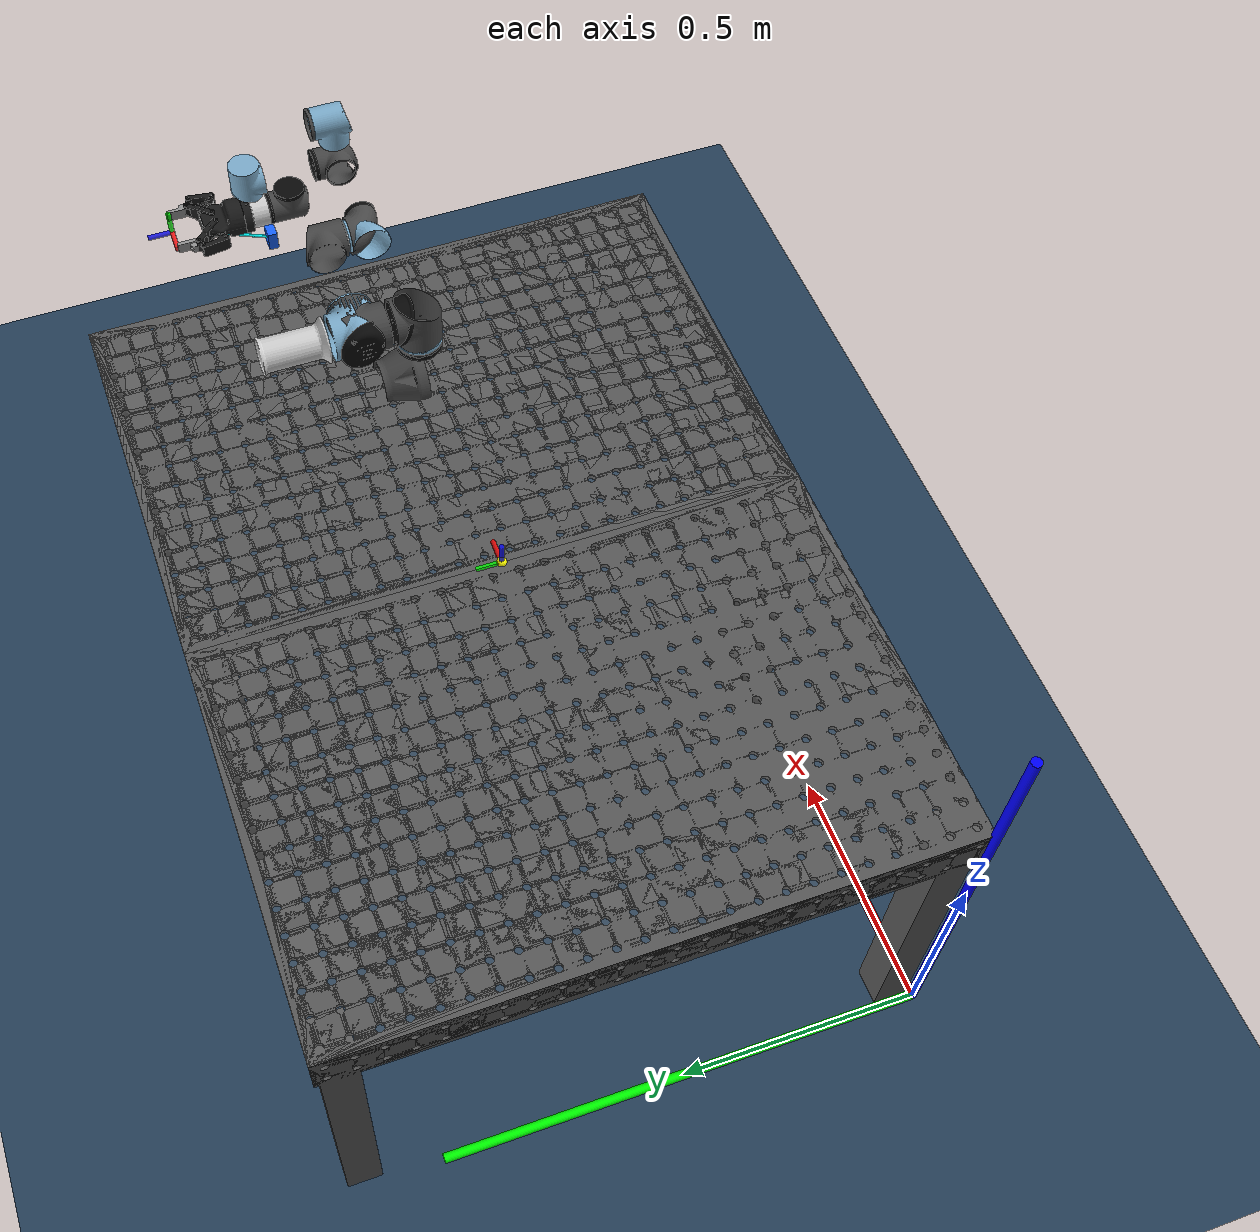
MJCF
<mujoco model="scene">

    <include file="../ur3e_robotiq/ur3e_robotiq.xml" />

    <compiler angle="radian" autolimits="true" />

    <option timestep="0.002" integrator="implicitfast" solver="PGS" gravity="0 0 -9.82"
            cone="elliptic" impratio="10" noslip_iterations="3">
    </option>

	<!-- 利用mujoco软件来调整Visualization->Free Camera->点击Align更新查看，需要在env代码里进行设置，不能自动启用 -->
    <statistic center="1.8 1.1 1.7" extent="0.8" meansize="0.08" />

    <visual>
        <headlight diffuse="0.6 0.6 0.6" ambient="0.1 0.1 0.1" specular="0 0 0" />
        <rgba haze="0.15 0.25 0.35 1" />

		<!-- 利用mujoco软件来调整Visualization->Free Camera->点击Align更新查看，需要在env代码里进行设置，不能自动启用 -->
		<global azimuth="210" elevation="-35" offheight="1280" offwidth="1280"/>
    </visual>

    <asset>
        <texture type="skybox" builtin="gradient" rgb1="0.3 0.5 0.7" rgb2="0 0 0" width="512"
                 height="3072" />
        <texture type="2d" name="groundplane" builtin="checker" mark="edge" rgb1="0.2 0.3 0.4"
                 rgb2="0.1 0.2 0.3" markrgb="0.8 0.8 0.8" width="300" height="300" />
        <material name="groundplane" texture="groundplane" texuniform="true" texrepeat="5 5"
                  reflectance="0.2" />

        <!--meshes-->
        <mesh name ="table" file="../table/sigmund_table.stl" scale= "1 1 1"/>
		<mesh name ="Apple" file="../fruit/Apple.STL" scale= "0.001 0.001 0.001"/>
		<mesh name ="Banana" file="../fruit/Banana.STL" scale= "0.001 0.001 0.001"/>

		<mesh name="hammer_head" file="../hammer/hammer_head.stl"/>
		<mesh name="hammer_neck" file="../hammer/hammer_neck.stl"/>
		<mesh name="hammer_contact0" file="../hammer/contact0.stl"/>
		<mesh name="hammer_contact1" file="../hammer/contact1.stl"/>

		<mesh name="knife_blade" file="../knife/knife_blade.stl"/>
        <mesh name="knife_handle" file="../knife/knife_handle.stl"/>
        <mesh name="knife_contact0" file="../knife/contact0.stl"/>
        <mesh name="knife_contact1" file="../knife/contact1.stl"/>

		<mesh name="duck" file="../duck/duck.stl" scale= "0.8 0.8 0.8"/>
        <mesh name="duck_contact0" file="../duck/contact0.stl" scale= "0.8 0.8 0.8"/>
        <mesh name="duck_contact1" file="../duck/contact1.stl" scale= "0.8 0.8 0.8"/>
        <mesh name="duck_contact2" file="../duck/contact2.stl" scale= "0.8 0.8 0.8"/>

		<texture name="apple_tex" type="2d" file="../fruit/mesh/red-apple.png"/>
		<material name="apple_mat" texture="apple_tex"/>
		<texture name="banana_tex" type="2d" file="../fruit/mesh/yellow-banana.png"/>
		<material name="banana_mat" texture="banana_tex"/>

    	<material name="hammer_head_mat" rgba="0.7 0.7 0.7 1" specular="0.5"/>
		<material name="hammer_neck_mat" rgba="0.73 0.5 0.39 1" specular="0.5"/>

		<material name="knife_blade_mat" rgba="0.75 0.75 0.75 1" specular="0.5"/>
		<material name="knife_handle_mat" rgba="0.1 0.1 0.1 1"/>

		<material name="duck_mat" rgba="1 1 0 1.0"/>

    </asset>

    <worldbody>
		<light pos="1.3 0.7 2.5" dir="0 0 -1" directional="true" />
		<geom name="floor" size="0 0 0.05" type="plane" material="groundplane" />
		<geom name="x-aixs" group="2" type="cylinder" contype="0" conaffinity="0"
			fromto="0 0 0 1 0 0" size="0.01" rgba="1 0 0 1" />
		<geom name="y-aixs" group="2" type="cylinder" contype="0" conaffinity="0"
			fromto="0 0 0 0 1 0" size="0.01" rgba="0 1 0 1" />
		<geom name="z-aixs" group="2" type="cylinder" contype="0" conaffinity="0"
			fromto="0 0 0 0 0 1" size="0.01" rgba="0 0 1 1" />

		<!-- 利用mujoco软件来调整Rendering->Camera -->
		<camera name="base_cam" pos="0.007 0.617 1.157" xyaxes="0.013 -1.000 -0.000 0.229 0.003 0.973"/>

		<!-- 桌面俯视相机：桌子中心 (0.8, 0.6)，桌面高 0.74m，相机高 0.74+0.8=1.54m，垂直俯视 -->
		<camera name="table_cam" pos="0.983 1.659 1.320" xyaxes="-1.000 -0.004 0.000 0.002 -0.454 0.891" />

		<!-- scene_cam_marker removed -->

		<body name="right_target" mocap="true" pos="0.8 0.6 0.74" quat="1 0 0 0">
			<!-- X-axis (red) -->
			<geom name="right_target_x_shaft" type="cylinder" fromto="0 0 0  0.05 0 0" size="0.005" rgba="1 0 0 0.8" contype="0" conaffinity="0" group="1"/>
			<!-- Y-axis (green) -->
			<geom name="right_target_y_shaft" type="cylinder" fromto="0 0 0  0 0.05 0" size="0.005" rgba="0 1 0 0.8" contype="0" conaffinity="0" group="1"/>
			<!-- Z-axis (blue) -->
			<geom name="right_target_z_shaft" type="cylinder" fromto="0 0 0  0 0 0.05" size="0.005" rgba="0 0 1 0.8" contype="0" conaffinity="0" group="1"/>
			<site type="sphere" size="0.01" rgba="1 1 0 1" group="1"/>
		</body>

		<!--Zones-->
		<!-- 绿色抓取区：桌子中央，机器人正前方可达范围 -->

        <!--table -->
		<body name = "table1" euler="0 0 0" pos= "0.8 0 0.74" >
		  <geom name = "table1" type="mesh" mesh="table" group="2" rgba="0.35 0.35 0.35 1" mass="0" contype="0" conaffinity="0"/>
		</body>
		<body name = "table2" euler="0 0 0" pos= "1.6 0 0.74" >
		  <geom name = "table2" type="mesh" mesh="table" group="2" rgba="0.35 0.35 0.35 1" mass="0" contype="0" conaffinity="0"/>
		</body>

		<body name="simple_table" pos="0.8 0.6 0.69" quat="1 0 0 0">
			<geom name="simple_table" type="box" size="0.8 0.6 0.05" rgba="0.5 0.5 0.5 0.1"/>
		</body>

	<!-- mug_5 replaced with simple box -->

	<!-- mug_6 replaced with simple box -->

    </worldbody>

	<keyframe>
		<key name="home" qpos="-3.14 -1.5708 1.5708 -1.5708 -1.5708 0  0 "
				ctrl="-3.14 -1.5708 1.5708 -1.5708 -1.5708 0  0 "/>
	</keyframe>

</mujoco>

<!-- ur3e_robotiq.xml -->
<mujoco model="ur3e_robotiq">
  <compiler angle="radian" meshdir="." autolimits="true"/>

  <option integrator="implicitfast" impratio="10"/>

  <default>
    <!-- UR3E默认设置 -->
    <default class="ur3e">
      <material specular="0.5" shininess="0.25"/>
      <joint axis="0 1 0" range="-6.28319 6.28319" armature="0.1"/>
      <general gaintype="fixed" biastype="affine" ctrlrange="-6.2831 6.2831" gainprm="1000" biasprm="0 -1000 -200"/>
      <default class="size2">
        <general forcerange="-54 54"/>
      </default>
      <default class="size1">
        <default class="size1_limited">
          <joint range="-3.1415 3.1415"/>
          <general gainprm="500" biasprm="0 -500 -100" ctrlrange="-3.1415 3.1415" forcerange="-28 28"/>
        </default>
      </default>
      <default class="size0">
        <general gainprm="250" biasprm="0 -250 -50" forcerange="-9 9"/>
      </default>
      <default class="visual">
        <geom type="mesh" contype="0" conaffinity="0" group="2"/>
      </default>
      <default class="collision">
        <geom type="capsule" group="3"/>
        <default class="eef_collision">
          <geom type="cylinder"/>
        </default>
      </default>
      <site size="0.001" rgba="0.5 0.5 0.5 0.3" group="4"/>
    </default>

    <!-- Robotiq 2F85默认设置 -->
    <default class="2f85">
      <mesh scale="0.001 0.001 0.001"/>
      <general biastype="affine"/>
      <joint axis="0 0 1"/>
      <default class="driver">
        <joint range="0 0.9" armature="0.005" damping="0.1" solimplimit="0.95 0.99 0.001" solreflimit="0.005 1"/>
      </default>
      <default class="follower">
        <joint range="-0.872664 0.9" armature="0.001" solimplimit="0.95 0.99 0.001" solreflimit="0.005 1"/>
      </default>
      <default class="spring_link">
        <joint range="-0.29670597283 0.9" armature="0.001" stiffness="0.05" springref="2.62" damping="0.00125"/>
      </default>
      <default class="coupler">
        <joint range="-1.57 0" armature="0.001" solimplimit="0.95 0.99 0.001" solreflimit="0.005 1"/>
      </default>
      <default class="visual2">
        <geom type="mesh" contype="0" conaffinity="0" group="2" material="black"/>
      </default>
      <default class="collision2">
        <geom type="mesh" group="3"/>
        <default class="pad_box_0">
          <geom mass="1e-6" type="box" pos="0.043258 0 0.12" size="0.002 0.011 0.009375" friction="0.7"
                solimp="0.95 0.99 0.001" solref="0.004 1" priority="1" rgba="0.55 0.55 0.55 1"/>
        </default>
        <default class="pad_box_1">
          <geom mass="1e-6" type="box" pos="0.043258 0 0.13875" size="0.002 0.011 0.009375" friction="0.6"
                solimp="0.95 0.99 0.001" solref="0.004 1" priority="1" rgba="0.45 0.45 0.45 1"/>
        </default>
      </default>
    </default>
  </default>

  <asset>
    <!-- UR3E材质 -->
    <material class="ur3e" name="urblack" rgba="0.033 0.033 0.033 1"/>
    <material class="ur3e" name="jointgray" rgba="0.278 0.278 0.278 1"/>
    <material class="ur3e" name="linkgray" rgba="0.82 0.82 0.82 1"/>
    <material class="ur3e" name="urblue" rgba="0.49 0.678 0.8 1"/>

    <!-- Robotiq材质 -->
    <material name="metal" rgba="0.58 0.58 0.58 1"/>
    <material name="silicone" rgba="0.1882 0.1882 0.1882 1"/>
    <material name="black" specular="0.5" shininess="0.25" rgba="0.1 0.1 0.1 1"/>

    <!-- UR3E网格 -->
    <mesh file="../ur3e/assets/base_0.obj"/>
    <mesh file="../ur3e/assets/base_1.obj"/>
    <mesh file="../ur3e/assets/shoulder_0.obj"/>
    <mesh file="../ur3e/assets/shoulder_1.obj"/>
    <mesh file="../ur3e/assets/shoulder_2.obj"/>
    <mesh file="../ur3e/assets/upperarm_0.obj"/>
    <mesh file="../ur3e/assets/upperarm_1.obj"/>
    <mesh file="../ur3e/assets/upperarm_2.obj"/>
    <mesh file="../ur3e/assets/upperarm_3.obj"/>
    <mesh file="../ur3e/assets/forearm_0.obj"/>
    <mesh file="../ur3e/assets/forearm_1.obj"/>
    <mesh file="../ur3e/assets/forearm_2.obj"/>
    <mesh file="../ur3e/assets/forearm_3.obj"/>
    <mesh file="../ur3e/assets/wrist1_0.obj"/>
    <mesh file="../ur3e/assets/wrist1_1.obj"/>
    <mesh file="../ur3e/assets/wrist1_2.obj"/>
    <mesh file="../ur3e/assets/wrist2_0.obj"/>
    <mesh file="../ur3e/assets/wrist2_1.obj"/>
    <mesh file="../ur3e/assets/wrist2_2.obj"/>
    <mesh file="../ur3e/assets/wrist3.obj"/>

    <!-- Robotiq 2F85网格 -->
    <mesh name="robotiq_base" file="../robotiq_2f85_v4/assets/base.stl"/>
    <mesh name="robotiq_base_coupling" file="../robotiq_2f85_v4/assets/base_coupling.stl"/>
    <mesh name="robotiq_open_body" file="../robotiq_2f85_v4/assets/c-a01-85-open.stl"/>
    <mesh name="robotiq_driver" file="../robotiq_2f85_v4/assets/driver.stl"/>
    <mesh name="robotiq_coupler" file="../robotiq_2f85_v4/assets/coupler.stl"/>
    <mesh name="robotiq_spring_link" file="../robotiq_2f85_v4/assets/spring_link.stl"/>
    <mesh name="robotiq_follower" file="../robotiq_2f85_v4/assets/follower.stl"/>
    <mesh name="robotiq_tongue" file="../robotiq_2f85_v4/assets/tongue.stl"/>
  </asset>

  <worldbody>
    <light name="spotlight" mode="targetbodycom" target="wrist_2_link" pos="0 -1 2"/>
    <body name="ur3e_base" pos="1.28 0.6 0.745" quat="1 0 0 0" childclass="ur3e">
      <inertial mass="2.0" pos="0 0 0" diaginertia="0.0030531654454 0.0030531654454 0.005625"/>
      <geom mesh="base_0" material="urblack" class="visual"/>
      <geom mesh="base_1" material="jointgray" class="visual"/>

      <body name="shoulder_link" pos="0 0 0.163">
        <inertial mass="2.0" pos="0 0 0" diaginertia="0.008093163429399999 0.008093163429399999 0.005625"/>
        <joint name="shoulder_pan_joint" class="size2" axis="0 0 1"/>
        <geom mesh="shoulder_0" material="urblue" class="visual"/>
        <geom mesh="shoulder_1" material="urblack" class="visual"/>
        <geom mesh="shoulder_2" material="jointgray" class="visual"/>
        <geom class="collision" size="0.05 0.05" pos="0 0 -0.04"/>

        <body name="upper_arm_link" pos="0 0.12 0" quat="1 0 1 0">
          <inertial mass="3.42" pos="0 0 0.121825" diaginertia="0.021728483221103233 0.021728483221103233 0.00961875"/>
          <joint name="shoulder_lift_joint" class="size2"/>
          <geom mesh="upperarm_0" material="urblack" class="visual"/>
          <geom mesh="upperarm_1" material="urblue" class="visual"/>
          <geom mesh="upperarm_2" material="jointgray" class="visual"/>
          <geom mesh="upperarm_3" material="linkgray" class="visual"/>
          <geom class="collision" pos="0 -0.04 0" quat="1 1 0 0" size="0.05 0.05"/>
          <geom class="collision" size="0.04 0.1" pos="0 0 0.1"/>

          <body name="forearm_link" pos="0 -0.093 0.24355">
            <inertial mass="1.26" pos="0 0 0.1066" diaginertia="0.0065445675821719194 0.0065445675821719194 0.00354375"/>
            <joint name="elbow_joint" class="size1_limited"/>
            <geom mesh="forearm_0" material="urblue" class="visual"/>
            <geom mesh="forearm_1" material="linkgray" class="visual"/>
            <geom mesh="forearm_2" material="urblack" class="visual"/>
            <geom mesh="forearm_3" material="jointgray" class="visual"/>
            <geom class="collision" pos="0 0.06 0" quat="1 1 0 0" size="0.04 0.052"/>
            <geom class="collision" size="0.03 0.1" pos="0 0 0.1"/>

            <body name="wrist_1_link" pos="0 0 0.2132" quat="1 0 1 0">
              <inertial mass="0.8" pos="0 0.104 0" diaginertia="0.002084999166 0.002084999166 0.00225"/>
              <joint name="wrist_1_joint" class="size0"/>
              <geom mesh="wrist1_0" material="urblack" class="visual"/>
              <geom mesh="wrist1_1" material="urblue" class="visual"/>
              <geom mesh="wrist1_2" material="jointgray" class="visual"/>
              <geom class="collision" pos="0 0.03 0" quat="1 1 0 0" size="0.032 0.045"/>

              <body name="wrist_2_link" pos="0 0.104 0">
                <inertial mass="0.8" pos="0 0 0.1" diaginertia="0.002084999166 0.002084999166 0.00225"/>
                <joint name="wrist_2_joint" axis="0 0 1" class="size0"/>
                <geom mesh="wrist2_0" material="urblue" class="visual"/>
                <geom mesh="wrist2_1" material="urblack" class="visual"/>
                <geom mesh="wrist2_2" material="jointgray" class="visual"/>
                <geom class="collision" size="0.032 0.045" pos="0 0 0.025"/>
                <geom class="collision" pos="0 0.015 0.085" quat="1 1 0 0" size="0.032 0.035"/>

                <body name="wrist_3_link" pos="0 0 0.08535">
                  <inertial mass="0.35" pos="0 0.0771683 0" quat="1 0 0 1"
                    diaginertia="0.00013626661215999998 0.00013626661215999998 0.0001792"/>
                  <joint name="wrist_3_joint" class="size0"/>
                  <geom material="linkgray" mesh="wrist3" class="visual"/>

                  <!-- 腕部手眼相机（安装在 wrist_3_link 上） -->
                  <body name="hand_camera_link" pos="0 0.05 0.08">
                    <!-- 蓝色小盒：相机机身 -->
                    <geom name="hand_cam_body" type="box" size="0.015 0.010 0.020"
                          rgba="0.1 0.4 1.0 1.0" contype="0" conaffinity="0" group="2" density="0"/>
                    <!-- 青色细线：视线方向（朝指尖方向 (0,+Y,-Z)） -->
                    <geom name="hand_cam_dir" type="cylinder" fromto="0 0 0  0 0.09 -0.04"
                          size="0.003" rgba="0 1 1 1.0" contype="0" conaffinity="0" group="2" density="0"/>
                    <!-- 红色小点：光心 -->
                    <geom name="hand_cam_origin" type="sphere" size="0.006"
                          rgba="1 0 0 1.0" contype="0" conaffinity="0" group="2" density="0"/>
                    <camera name="hand_camera" mode="fixed" fovy="60" xyaxes="1 0 0  0 0.38 0.92"/>
                  </body>

                  <!-- Robotiq 2F85机械手安装在UR3E末端 -->
                  <body name="robotiq_base" pos="0 0.09 0" euler="-1.57 0 0" childclass="2f85">
                    <inertial mass="0.777441" pos="0 -2.70394e-05 0.0354675" quat="1 -0.00152849 0 0"
                              diaginertia="0.000260285 0.000225381 0.000152708"/>
                    <geom class="visual2" pos="0 0 0.0108" quat="0 0 0 1" mesh="robotiq_base"/>
                    <geom class="visual2" pos="0 0 0.004" quat="1 -1 0 0" mesh="robotiq_base_coupling"/>
                    <geom class="visual2" pos="0 0 0.0108" quat="1 0 0 0" material="metal" mesh="robotiq_open_body"/>
                    <geom class="collision2" mesh="robotiq_base"/>

                    <!-- TCP: 两指抓取中心，z 沿夹爪进入方向 -->
                    <body name="gripper_tcp" pos="0 0 0.16">
                      <site name="gripper_tcp_site" pos="0 0 0" size="0.006" rgba="1 1 0 0.8" group="2"/>
                      <!-- 可视化 TCP 坐标系 (长度设为 5cm，粗细为 2mm) -->
                      <!-- X 轴 (红色) -->
                      <geom name="tcp_x" type="cylinder" fromto="0 0 0  0.05 0 0" size="0.005" rgba="1 0 0 0.8" contype="0" conaffinity="0" group="2"/>
                      <!-- Y 轴 (绿色) -->
                      <geom name="tcp_y" type="cylinder" fromto="0 0 0  0 0.05 0" size="0.005" rgba="0 1 0 0.8" contype="0" conaffinity="0" group="2"/>
                      <!-- Z 轴 (蓝色) -->
                      <geom name="tcp_z" type="cylinder" fromto="0 0 0  0 0 0.05" size="0.005" rgba="0 0 1 0.8" contype="0" conaffinity="0" group="2"/>
                    </body>

                    <body name="left_driver" pos="-0.0306011 0.00475 0.0657045" quat="1 -1 0 0">
                      <inertial mass="0.00899563" pos="0 0.0177547 0.00107314" quat="0.681301 0.732003 0 0"
                                diaginertia="1.72352e-06 1.60906e-06 3.22006e-07"/>
                      <joint name="left_driver_joint" class="driver"/>
                      <geom class="visual2" pos="0.0306011 0.0549045 -0.0047" quat="1 1 0 0" material="metal" mesh="robotiq_driver"/>
                      <geom class="collision2" pos="0.0306011 0.0549045 -0.0047" quat="1 1 0 0" mesh="robotiq_driver"/>
                      <body name="left_coupler" pos="-0.0314249 0.00453223 -0.0102" quat="0 0 0 1">
                        <inertial mass="0.0140974" pos="0 0.00301209 0.0232175" quat="0.705636 -0.0455904 0.0455904 0.705636"
                                  diaginertia="4.16206e-06 3.52216e-06 8.88131e-07"/>
                        <geom class="visual2" pos="-0.062026 -0.0503723 0.0055" quat="1 -1 0 0" mesh="robotiq_coupler"/>
                        <geom class="collision2" pos="-0.062026 -0.0503723 0.0055" quat="1 -1 0 0" mesh="robotiq_coupler"/>
                      </body>
                    </body>

                    <body name="left_spring_link" pos="-0.0127 -0.012 0.07222" quat="1 -1 0 0">
                      <inertial mass="0.0221642" pos="-8.65005e-09 0.0181624 0.0212658" quat="0.663403 -0.244737 0.244737 0.663403"
                                diaginertia="8.96853e-06 6.71733e-06 2.63931e-06"/>
                      <joint name="left_spring_link_joint" class="spring_link"/>
                      <geom class="visual2" pos="0.0127 0.06142 0.01205" quat="1 1 0 0" mesh="robotiq_spring_link"/>
                      <geom class="collision2" pos="0.0127 0.06142 0.01205" quat="1 1 0 0" mesh="robotiq_spring_link"/>
                      <body name="left_follower" pos="-0.0382079 -0.0425003 0.00295" quat="0 -1 -1.90231e-05 0">
                        <inertial mass="0.0125222" pos="0 -0.011046 0.0124786" quat="1 0.1664 0 0"
                                  diaginertia="2.67415e-06 2.4559e-06 6.02031e-07"/>
                        <joint name="left_follower_joint" class="follower"/>
                        <geom class="visual2" pos="0.0509079 -0.10392 -0.0091" quat="1 -1 0 0" mesh="robotiq_follower"/>
                        <geom class="visual2" pos="0.0509079 -0.10392 -0.0091" quat="1 -1 0 0" material="metal" mesh="robotiq_tongue"/>
                        <geom class="collision2" pos="0.0509079 -0.10392 -0.0091" quat="1 -1 0 0" mesh="robotiq_follower"/>
                        <geom class="collision2" pos="0.0509079 -0.10392 -0.0091" quat="1 -1 0 0" mesh="robotiq_tongue"/>
                        <body name="left_pad" pos="-0.0377897 -0.103916 -0.0091" quat="1 -1 0 0">
                          <geom class="pad_box_0" name="left_pad1"/>
                          <geom class="pad_box_1" name="left_pad2"/>
                        </body>
                      </body>
                    </body>

                    <body name="right_driver" pos="0.0306011 -0.00475 0.0657045" quat="0 0 -1 1">
                      <inertial mass="0.00899563" pos="2.96931e-12 0.0177547 0.00107314" quat="0.681301 0.732003 0 0"
                                diaginertia="1.72352e-06 1.60906e-06 3.22006e-07"/>
                      <joint name="right_driver_joint" class="driver"/>
                      <geom class="visual2" pos="0.0306011 0.0549045 -0.0047" quat="1 1 0 0" material="metal" mesh="robotiq_driver"/>
                      <geom class="collision2" pos="0.0306011 0.0549045 -0.0047" quat="1 1 0 0" mesh="robotiq_driver"/>
                      <body name="right_coupler" pos="-0.0314249 0.00453223 -0.0102" quat="0 0 0 1">
                        <inertial mass="0.0140974" pos="0 0.00301209 0.0232175" quat="0.705636 -0.0455904 0.0455904 0.705636"
                                  diaginertia="4.16206e-06 3.52216e-06 8.88131e-07"/>
                        <geom class="visual2" pos="-0.062026 -0.0503723 0.0055" quat="1 -1 0 0" mesh="robotiq_coupler"/>
                        <geom class="collision2" pos="-0.062026 -0.0503723 0.0055" quat="1 -1 0 0" mesh="robotiq_coupler"/>
                      </body>
                    </body>

                    <body name="right_spring_link" pos="0.0127 0.012 0.07222" quat="0 0 -1 1">
                      <inertial mass="0.0221642" pos="-8.65005e-09 0.0181624 0.0212658" quat="0.663403 -0.244737 0.244737 0.663403"
                                diaginertia="8.96853e-06 6.71733e-06 2.63931e-06"/>
                      <joint name="right_spring_link_joint" class="spring_link"/>
                      <geom class="visual2" pos="0.0127 0.06142 0.01205" quat="1 1 0 0" mesh="robotiq_spring_link"/>
                      <geom class="collision2" pos="0.0127 0.06142 0.01205" quat="1 1 0 0" mesh="robotiq_spring_link"/>
                      <body name="right_follower" pos="-0.0382079 -0.0425003 0.00295" quat="0 -1 0 0">
                        <inertial mass="0.0125222" pos="0 -0.011046 0.0124786" quat="1 0.1664 0 0"
                                  diaginertia="2.67415e-06 2.4559e-06 6.02031e-07"/>
                        <joint name="right_follower_joint" class="follower"/>
                        <geom class="visual2" pos="0.0509079 -0.10392 -0.0091" quat="1 -1 0 0" material="metal" mesh="robotiq_tongue"/>
                        <geom class="visual2" pos="0.0509079 -0.10392 -0.0091" quat="1 -1 0 0" mesh="robotiq_follower"/>
                        <geom class="collision2" pos="0.0509079 -0.10392 -0.0091" quat="1 -1 0 0" mesh="robotiq_tongue"/>
                        <geom class="collision2" pos="0.0509079 -0.10392 -0.0091" quat="1 -1 0 0" mesh="robotiq_follower"/>
                        <body name="right_pad" pos="-0.0377897 -0.103916 -0.0091" quat="1 -1 0 0">
                          <geom class="pad_box_0" name="right_pad1"/>
                          <geom class="pad_box_1" name="right_pad2"/>
                        </body>
                      </body>
                    </body>
                  </body>
                </body>
              </body>
            </body>
          </body>
        </body>
      </body>
    </body>
  </worldbody>

  <!-- 碰撞排除配置 -->
  <contact>
    <!-- UR3E内部碰撞排除 -->

    <!-- Robotiq内部碰撞排除 -->
    <exclude body1="robotiq_base" body2="left_driver"/>
    <exclude body1="robotiq_base" body2="right_driver"/>
    <exclude body1="robotiq_base" body2="left_spring_link"/>
    <exclude body1="robotiq_base" body2="right_spring_link"/>
    <exclude body1="right_coupler" body2="right_follower"/>
    <exclude body1="left_coupler" body2="left_follower"/>

    <!-- 跨系统碰撞排除 -->
    <exclude body1="wrist_3_link" body2="robotiq_base"/>
    <exclude body1="wrist_3_link" body2="left_driver"/>
    <exclude body1="wrist_3_link" body2="right_driver"/>
    <exclude body1="wrist_3_link" body2="left_spring_link"/>
    <exclude body1="wrist_3_link" body2="right_spring_link"/>
  </contact>

  <!-- Robotiq腱传动系统 -->
  <tendon>
    <fixed name="split">
      <joint joint="right_driver_joint" coef="0.485"/>
      <joint joint="left_driver_joint" coef="0.485"/>
    </fixed>
  </tendon>

  <!-- Robotiq等式约束 -->
  <equality>
    <connect anchor="-0.0179014 -0.00651468 0.0044" body1="right_follower" body2="right_coupler" solimp="0.95 0.99 0.001" solref="0.005 1"/>
    <connect anchor="-0.0179014 -0.00651468 0.0044" body1="left_follower" body2="left_coupler" solimp="0.95 0.99 0.001" solref="0.005 1"/>
    <joint joint1="right_driver_joint" joint2="left_driver_joint" polycoef="0 1 0 0 0" solimp="0.95 0.99 0.001" solref="0.005 1"/>
  </equality>

  <!-- 驱动器配置 -->
  <actuator>
    <!-- UR3E驱动器 -->
    <general class="size2" name="shoulder_pan" joint="shoulder_pan_joint"/>
    <general class="size2" name="shoulder_lift" joint="shoulder_lift_joint"/>
    <general class="size1_limited" name="elbow" joint="elbow_joint"/>
    <general class="size0" name="wrist_1" joint="wrist_1_joint"/>
    <general class="size0" name="wrist_2" joint="wrist_2_joint"/>
    <general class="size0" name="wrist_3" joint="wrist_3_joint"/>

    <!-- Robotiq驱动器：保持 0~0.6 控制范围，兼容现有 teleop trigger 映射 -->
    <general class="2f85" name="fingers_actuator" tendon="split" forcerange="-50 50" ctrlrange="0 0.6"
             gainprm="133.333333 0 0" biasprm="0 -100 -10"/>
  </actuator>
</mujoco>
